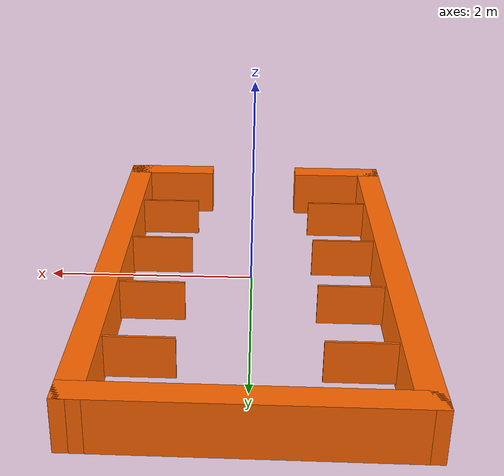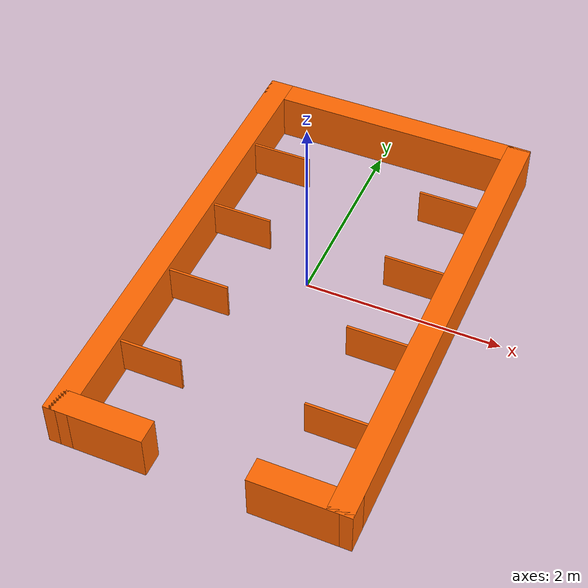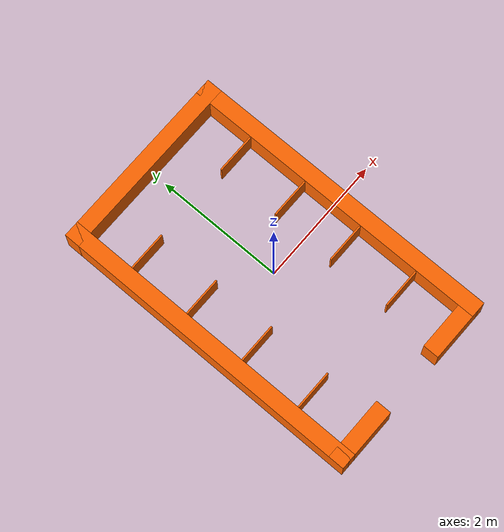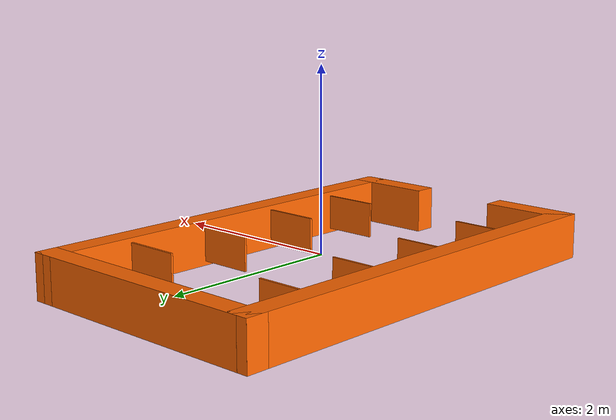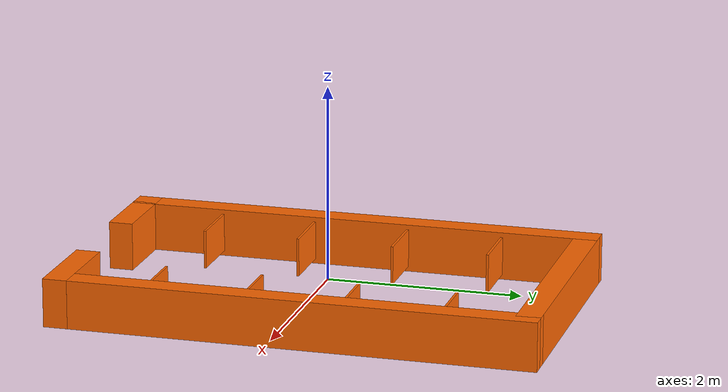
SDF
<!--
@file robot_parking.sdf
@author Daniel Onderka (xonder05)
@date 03/2026
-->

<sdf version="1.9">
  <model name="robot_parking">

    <!-- Walls -->

    <model name="wall1">
      <static>true</static>
      <pose>0 2.375 0 0 0 0</pose>
      <link name="link">
        <visual name="visual">
          <geometry><box><size>3 0.25 0.5</size></box></geometry>
          <material><diffuse>1.0 0.4 0 1</diffuse></material>
        </visual>
        <collision name="collision">
          <geometry><box><size>3 0.25 0.5</size></box></geometry>
        </collision>
      </link>
    </model>

    <model name="wall2">
      <static>true</static>
      <pose>1.375 0 0 0 0 1.5707</pose>
      <link name="link">
        <visual name="visual">
          <geometry><box><size>5 0.25 0.5</size></box></geometry>
          <material><diffuse>1.0 0.4 0 1</diffuse></material>
        </visual>
        <collision name="collision">
        <geometry><box><size>5 0.25 0.5</size></box></geometry>
        </collision>
      </link>
    </model>

    <model name="wall3">
      <static>true</static>
      <pose>-1.375 0 0 0 0 1.5707</pose>
      <link name="link">
        <visual name="visual">
          <geometry><box><size>5 0.25 0.5</size></box></geometry>
          <material><diffuse>1.0 0.4 0 1</diffuse></material>
        </visual>
        <collision name="collision">
        <geometry><box><size>5 0.25 0.5</size></box></geometry>
        </collision>
      </link>
    </model>

    <model name="wall4">
      <static>true</static>
      <pose>1 -2.375 0 0 0 0</pose>
      <link name="link">
        <visual name="visual">
          <geometry><box><size>1 0.25 0.5</size></box></geometry>
          <material><diffuse>1.0 0.4 0 1</diffuse></material>
        </visual>
        <collision name="collision">
        <geometry><box><size>1 0.25 0.5</size></box></geometry>
        </collision>
      </link>
    </model>

    <model name="wall5">
      <static>true</static>
      <pose>-1 -2.375 0 0 0 0</pose>
      <link name="link">
        <visual name="visual">
          <geometry><box><size>1 0.25 0.5</size></box></geometry>
          <material><diffuse>1.0 0.4 0 1</diffuse></material>
        </visual>
        <collision name="collision">
        <geometry><box><size>1 0.25 0.5</size></box></geometry>
        </collision>
      </link>
    </model>

    <!-- Base station separators -->

    <model name="base_station_separator_1">
      <static>true</static>
      <pose>1 1.5 0 0 0 0</pose>
      <link name="link">
        <visual name="visual">
          <geometry><box><size>0.75 0.025 0.4</size></box></geometry>
          <material><diffuse>1.0 0.4 0 1</diffuse></material>
        </visual>
        <collision name="collision">
        <geometry><box><size>0.75 0.025 0.4</size></box></geometry>
        </collision>
      </link>
    </model>

    <model name="base_station_separator_2">
      <static>true</static>
      <pose>1 0.5 0 0 0 0</pose>
      <link name="link">
        <visual name="visual">
          <geometry><box><size>0.75 0.025 0.4</size></box></geometry>
          <material><diffuse>1.0 0.4 0 1</diffuse></material>
        </visual>
        <collision name="collision">
        <geometry><box><size>0.75 0.025 0.4</size></box></geometry>
        </collision>
      </link>
    </model>

    <model name="base_station_separator_3">
      <static>true</static>
      <pose>1 -0.5 0 0 0 0</pose>
      <link name="link">
        <visual name="visual">
          <geometry><box><size>0.75 0.025 0.4</size></box></geometry>
          <material><diffuse>1.0 0.4 0 1</diffuse></material>
        </visual>
        <collision name="collision">
          <geometry><box><size>0.75 0.025 0.4</size></box></geometry>
        </collision>
      </link>
    </model>

    <model name="base_station_separator_4">
      <static>true</static>
      <pose>1 -1.5 0 0 0 0</pose>
      <link name="link">
        <visual name="visual">
          <geometry><box><size>0.75 0.025 0.4</size></box></geometry>
          <material><diffuse>1.0 0.4 0 1</diffuse></material>
        </visual>
        <collision name="collision">
          <geometry><box><size>0.75 0.025 0.4</size></box></geometry>
        </collision>
      </link>
    </model>

    <model name="base_station_separator_5">
      <static>true</static>
      <pose>-1 1.5 0 0 0 0</pose>
      <link name="link">
        <visual name="visual">
          <geometry><box><size>0.75 0.025 0.4</size></box></geometry>
          <material><diffuse>1.0 0.4 0 1</diffuse></material>
        </visual>
        <collision name="collision">
          <geometry><box><size>0.75 0.025 0.4</size></box></geometry>
        </collision>
      </link>
    </model>

    <model name="base_station_separator_6">
      <static>true</static>
      <pose>-1 0.5 0 0 0 0</pose>
      <link name="link">
        <visual name="visual">
          <geometry><box><size>0.75 0.025 0.4</size></box></geometry>
          <material><diffuse>1.0 0.4 0 1</diffuse></material>
        </visual>
        <collision name="collision">
          <geometry><box><size>0.75 0.025 0.4</size></box></geometry>
        </collision>
      </link>
    </model>

    <model name="base_station_separator_7">
      <static>true</static>
      <pose>-1 -0.5 0 0 0 0</pose>
      <link name="link">
        <visual name="visual">
          <geometry><box><size>0.75 0.025 0.4</size></box></geometry>
          <material><diffuse>1.0 0.4 0 1</diffuse></material>
        </visual>
        <collision name="collision">
          <geometry><box><size>0.75 0.025 0.4</size></box></geometry>
        </collision>
      </link>
    </model>

    <model name="base_station_separator_8">
      <static>true</static>
      <pose>-1 -1.5 0 0 0 0</pose>
      <link name="link">
        <visual name="visual">
          <geometry><box><size>0.75 0.025 0.4</size></box></geometry>
          <material><diffuse>1.0 0.4 0 1</diffuse></material>
        </visual>
        <collision name="collision">
          <geometry><box><size>0.75 0.025 0.4</size></box></geometry>
        </collision>
      </link>
    </model>

  </model>
</sdf>
